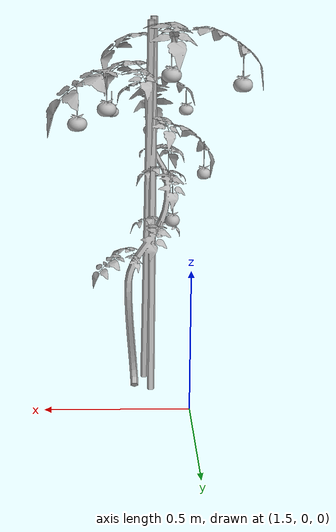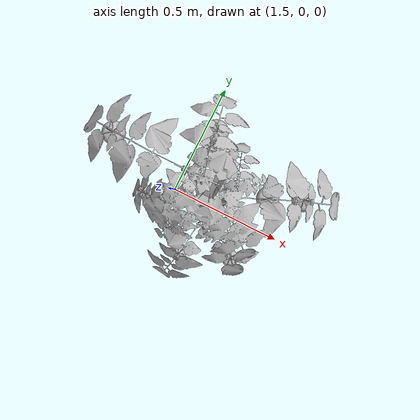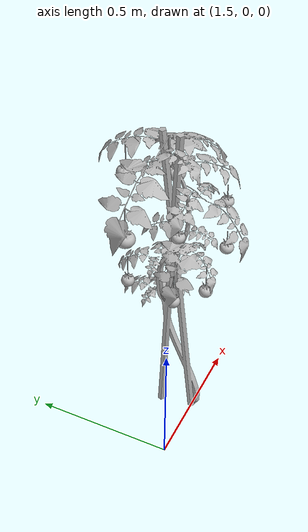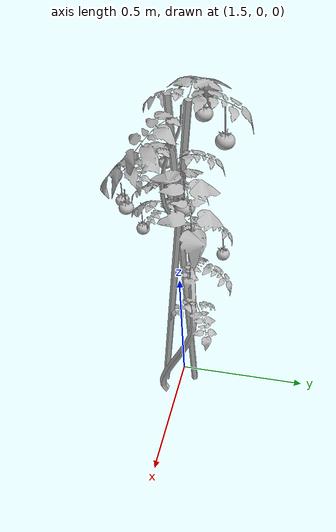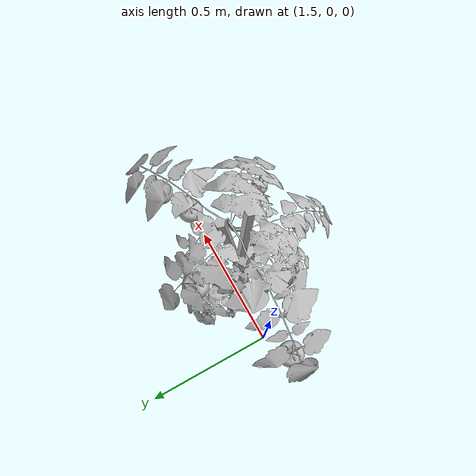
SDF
<sdf version="1.6">
 <world name="default">
  <model name="plant10">
   <static>0</static>
   <link name="tomato_plant_link">
    <inertial>
     <mass>20</mass>
     <inertia><ixx>1</ixx><ixy>0</ixy><ixz>0</ixz><iyy>1</iyy><iyz>0</iyz><izz>1</izz></inertia>
    </inertial>
    <visual name="visual">
     <geometry><mesh><uri>model://tomato_plant/meshes/tomato_plant.obj</uri></mesh></geometry>
    </visual>
    <collision name="collision">
     <pose>0 0 0.01 0 -0 0</pose>
     <geometry><cylinder><radius>0.2</radius><length>0.02</length></cylinder></geometry>
    </collision>
   </link>
   <link name="t_link_0">
    <pose>0.176111 0.046061 0.713729 0 -0 0</pose>
    <inertial>
     <mass>0.1</mass>
     <inertia><ixx>1</ixx><ixy>0</ixy><ixz>0</ixz><iyy>1</iyy><iyz>0</iyz><izz>1</izz></inertia>
    </inertial>
    <collision name="collision"><geometry><sphere><radius>0.02</radius></sphere></geometry></collision>
    <visual name="visual">
     <geometry><mesh><uri>model://green_tomato/meshes/green_tomato.obj</uri></mesh></geometry>
    </visual>
   </link>
   <joint name="t_joint_0" type="fixed">
    <parent>tomato_plant_link</parent>
    <child>t_link_0</child>
    <axis>
     <xyz>0 0 1</xyz>
     <use_parent_model_frame>1</use_parent_model_frame>
     <limit><lower>-1e+16</lower><upper>1e+16</upper></limit>
    </axis>
    <sensor name="force_torque" type="force_torque">
     <always_on>1</always_on>
     <update_rate>250</update_rate>
     <plugin name="breakable_0" filename="libBreakableJointPlugin.so">
      <breaking_force_N>20</breaking_force_N>
     </plugin>
    </sensor>
   </joint>
   <link name="t_link_1">
    <pose>0.063172 0.108629 0.685474 0 -0 0</pose>
    <inertial>
     <mass>0.1</mass>
     <inertia><ixx>1</ixx><ixy>0</ixy><ixz>0</ixz><iyy>1</iyy><iyz>0</iyz><izz>1</izz></inertia>
    </inertial>
    <collision name="collision"><geometry><sphere><radius>0.02</radius></sphere></geometry></collision>
    <visual name="visual">
     <geometry><mesh><uri>model://green_tomato/meshes/green_tomato.obj</uri></mesh></geometry>
    </visual>
   </link>
   <joint name="t_joint_1" type="fixed">
    <parent>tomato_plant_link</parent>
    <child>t_link_1</child>
    <axis>
     <xyz>0 0 1</xyz>
     <use_parent_model_frame>1</use_parent_model_frame>
     <limit><lower>-1e+16</lower><upper>1e+16</upper></limit>
    </axis>
    <sensor name="force_torque" type="force_torque">
     <always_on>1</always_on>
     <update_rate>250</update_rate>
     <plugin name="breakable_1" filename="libBreakableJointPlugin.so">
      <breaking_force_N>20</breaking_force_N>
     </plugin>
    </sensor>
   </joint>
   <link name="t_link_2">
    <pose>0.062027 -0.170581 0.614534 0 -0 0</pose>
    <inertial>
     <mass>0.1</mass>
     <inertia><ixx>1</ixx><ixy>0</ixy><ixz>0</ixz><iyy>1</iyy><iyz>0</iyz><izz>1</izz></inertia>
    </inertial>
    <collision name="collision"><geometry><sphere><radius>0.02</radius></sphere></geometry></collision>
    <visual name="visual">
     <geometry><mesh><uri>model://green_tomato/meshes/green_tomato.obj</uri></mesh></geometry>
    </visual>
   </link>
   <joint name="t_joint_2" type="fixed">
    <parent>tomato_plant_link</parent>
    <child>t_link_2</child>
    <axis>
     <xyz>0 0 1</xyz>
     <use_parent_model_frame>1</use_parent_model_frame>
     <limit><lower>-1e+16</lower><upper>1e+16</upper></limit>
    </axis>
    <sensor name="force_torque" type="force_torque">
     <always_on>1</always_on>
     <update_rate>250</update_rate>
     <plugin name="breakable_2" filename="libBreakableJointPlugin.so">
      <breaking_force_N>20</breaking_force_N>
     </plugin>
    </sensor>
   </joint>
   <link name="t_link_3">
    <pose>0.114746 0.0304 0.926457 0 -0 0</pose>
    <inertial>
     <mass>0.1</mass>
     <inertia><ixx>1</ixx><ixy>0</ixy><ixz>0</ixz><iyy>1</iyy><iyz>0</iyz><izz>1</izz></inertia>
    </inertial>
    <collision name="collision"><geometry><sphere><radius>0.02</radius></sphere></geometry></collision>
    <visual name="visual">
     <geometry><mesh><uri>model://yellow_tomato/meshes/yellow_tomato.obj</uri></mesh></geometry>
    </visual>
   </link>
   <joint name="t_joint_3" type="fixed">
    <parent>tomato_plant_link</parent>
    <child>t_link_3</child>
    <axis>
     <xyz>0 0 1</xyz>
     <use_parent_model_frame>1</use_parent_model_frame>
     <limit><lower>-1e+16</lower><upper>1e+16</upper></limit>
    </axis>
    <sensor name="force_torque" type="force_torque">
     <always_on>1</always_on>
     <update_rate>250</update_rate>
     <plugin name="breakable_3" filename="libBreakableJointPlugin.so">
      <breaking_force_N>20</breaking_force_N>
     </plugin>
    </sensor>
   </joint>
   <link name="t_link_4">
    <pose>0.003426 0.147925 0.840454 0 -0 0</pose>
    <inertial>
     <mass>0.1</mass>
     <inertia><ixx>1</ixx><ixy>0</ixy><ixz>0</ixz><iyy>1</iyy><iyz>0</iyz><izz>1</izz></inertia>
    </inertial>
    <collision name="collision"><geometry><sphere><radius>0.02</radius></sphere></geometry></collision>
    <visual name="visual">
     <geometry><mesh><uri>model://yellow_tomato/meshes/yellow_tomato.obj</uri></mesh></geometry>
    </visual>
   </link>
   <joint name="t_joint_4" type="fixed">
    <parent>tomato_plant_link</parent>
    <child>t_link_4</child>
    <axis>
     <xyz>0 0 1</xyz>
     <use_parent_model_frame>1</use_parent_model_frame>
     <limit><lower>-1e+16</lower><upper>1e+16</upper></limit>
    </axis>
    <sensor name="force_torque" type="force_torque">
     <always_on>1</always_on>
     <update_rate>250</update_rate>
     <plugin name="breakable_4" filename="libBreakableJointPlugin.so">
      <breaking_force_N>20</breaking_force_N>
     </plugin>
    </sensor>
   </joint>
   <link name="t_link_5">
    <pose>-0.12391 0.091553 0.91111 0 -0 0</pose>
    <inertial>
     <mass>0.1</mass>
     <inertia><ixx>1</ixx><ixy>0</ixy><ixz>0</ixz><iyy>1</iyy><iyz>0</iyz><izz>1</izz></inertia>
    </inertial>
    <collision name="collision"><geometry><sphere><radius>0.02</radius></sphere></geometry></collision>
    <visual name="visual">
     <geometry><mesh><uri>model://yellow_tomato/meshes/yellow_tomato.obj</uri></mesh></geometry>
    </visual>
   </link>
   <joint name="t_joint_5" type="fixed">
    <parent>tomato_plant_link</parent>
    <child>t_link_5</child>
    <axis>
     <xyz>0 0 1</xyz>
     <use_parent_model_frame>1</use_parent_model_frame>
     <limit><lower>-1e+16</lower><upper>1e+16</upper></limit>
    </axis>
    <sensor name="force_torque" type="force_torque">
     <always_on>1</always_on>
     <update_rate>250</update_rate>
     <plugin name="breakable_5" filename="libBreakableJointPlugin.so">
      <breaking_force_N>20</breaking_force_N>
     </plugin>
    </sensor>
   </joint>
   <link name="t_link_6">
    <pose>-0.23014 -0.132697 0.911579 0 -0 0</pose>
    <inertial>
     <mass>0.1</mass>
     <inertia><ixx>1</ixx><ixy>0</ixy><ixz>0</ixz><iyy>1</iyy><iyz>0</iyz><izz>1</izz></inertia>
    </inertial>
    <collision name="collision"><geometry><sphere><radius>0.03</radius></sphere></geometry></collision>
    <visual name="visual">
     <geometry><mesh><uri>model://red_tomato/meshes/red_tomato.obj</uri></mesh></geometry>
    </visual>
   </link>
   <joint name="t_joint_6" type="fixed">
    <parent>tomato_plant_link</parent>
    <child>t_link_6</child>
    <axis>
     <xyz>0 0 1</xyz>
     <use_parent_model_frame>1</use_parent_model_frame>
     <limit><lower>-1e+16</lower><upper>1e+16</upper></limit>
    </axis>
    <sensor name="force_torque" type="force_torque">
     <always_on>1</always_on>
     <update_rate>250</update_rate>
     <plugin name="breakable_6" filename="libBreakableJointPlugin.so">
      <breaking_force_N>20</breaking_force_N>
     </plugin>
    </sensor>
   </joint>
   <link name="t_link_7">
    <pose>-0.139776 -0.09326 0.950185 0 -0 0</pose>
    <inertial>
     <mass>0.1</mass>
     <inertia><ixx>1</ixx><ixy>0</ixy><ixz>0</ixz><iyy>1</iyy><iyz>0</iyz><izz>1</izz></inertia>
    </inertial>
    <collision name="collision"><geometry><sphere><radius>0.03</radius></sphere></geometry></collision>
    <visual name="visual">
     <geometry><mesh><uri>model://red_tomato/meshes/red_tomato.obj</uri></mesh></geometry>
    </visual>
   </link>
   <joint name="t_joint_7" type="fixed">
    <parent>tomato_plant_link</parent>
    <child>t_link_7</child>
    <axis>
     <xyz>0 0 1</xyz>
     <use_parent_model_frame>1</use_parent_model_frame>
     <limit><lower>-1e+16</lower><upper>1e+16</upper></limit>
    </axis>
    <sensor name="force_torque" type="force_torque">
     <always_on>1</always_on>
     <update_rate>250</update_rate>
     <plugin name="breakable_7" filename="libBreakableJointPlugin.so">
      <breaking_force_N>20</breaking_force_N>
     </plugin>
    </sensor>
   </joint>
   <link name="t_link_8">
    <pose>0.284181 -0.063758 1.01928 0 -0 0</pose>
    <inertial>
     <mass>0.1</mass>
     <inertia><ixx>1</ixx><ixy>0</ixy><ixz>0</ixz><iyy>1</iyy><iyz>0</iyz><izz>1</izz></inertia>
    </inertial>
    <collision name="collision"><geometry><sphere><radius>0.03</radius></sphere></geometry></collision>
    <visual name="visual">
     <geometry><mesh><uri>model://red_tomato/meshes/red_tomato.obj</uri></mesh></geometry>
    </visual>
   </link>
   <joint name="t_joint_8" type="fixed">
    <parent>tomato_plant_link</parent>
    <child>t_link_8</child>
    <axis>
     <xyz>0 0 1</xyz>
     <use_parent_model_frame>1</use_parent_model_frame>
     <limit><lower>-1e+16</lower><upper>1e+16</upper></limit>
    </axis>
    <sensor name="force_torque" type="force_torque">
     <always_on>1</always_on>
     <update_rate>250</update_rate>
     <plugin name="breakable_8" filename="libBreakableJointPlugin.so">
      <breaking_force_N>20</breaking_force_N>
     </plugin>
    </sensor>
   </joint>
   <link name="t_link_9">
    <pose>0.055319 -0.176349 1.06525 0 -0 0</pose>
    <inertial>
     <mass>0.1</mass>
     <inertia><ixx>1</ixx><ixy>0</ixy><ixz>0</ixz><iyy>1</iyy><iyz>0</iyz><izz>1</izz></inertia>
    </inertial>
    <collision name="collision"><geometry><sphere><radius>0.03</radius></sphere></geometry></collision>
    <visual name="visual">
     <geometry><mesh><uri>model://red_tomato/meshes/red_tomato.obj</uri></mesh></geometry>
    </visual>
   </link>
   <joint name="t_joint_9" type="fixed">
    <parent>tomato_plant_link</parent>
    <child>t_link_9</child>
    <axis>
     <xyz>0 0 1</xyz>
     <use_parent_model_frame>1</use_parent_model_frame>
     <limit><lower>-1e+16</lower><upper>1e+16</upper></limit>
    </axis>
    <sensor name="force_torque" type="force_torque">
     <always_on>1</always_on>
     <update_rate>250</update_rate>
     <plugin name="breakable_9" filename="libBreakableJointPlugin.so">
      <breaking_force_N>20</breaking_force_N>
     </plugin>
    </sensor>
   </joint>
   <pose>1.63732 0.008659 0.111806 0.000957 -0.001472 3.13997</pose>
  </model>
 </world>
</sdf>
